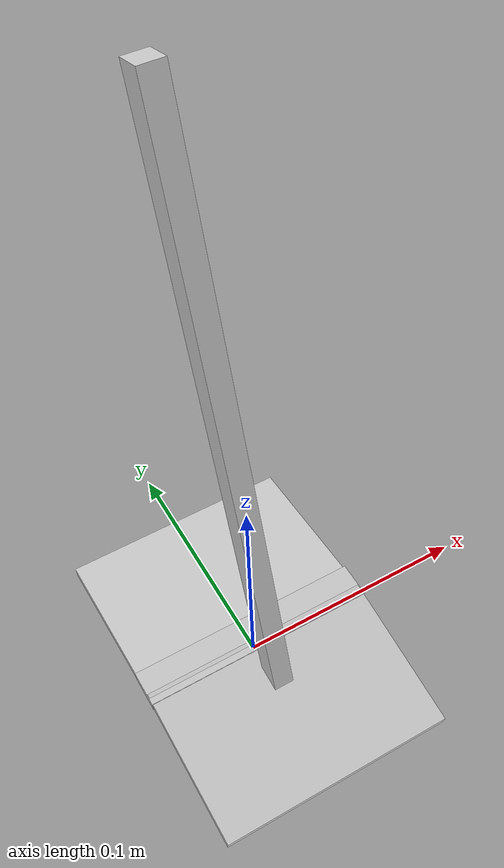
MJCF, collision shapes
<mujoco model="wine_rack_stand">
  <asset>
  <texture file="metal.png" name="tex-wine_rack_stand" type="2d" />
  <material name="wine_rack_stand" reflectance="0.5" texrepeat="1 1" texture="tex-wine_rack_stand" texuniform="false" />
  <mesh file="visual/wine_rack_stand_vis.msh" name="wine_rack_stand_vis" scale="0.0025 0.0025 0.0025" /></asset>
  <worldbody>
    <body>
      <body name="object">
      <geom solimp="0.998 0.998 0.001" solref="0.001 1" density="100" friction="0.95 0.3 0.1" type="mesh" mesh="wine_rack_stand_vis" conaffinity="0" contype="0" group="1" material="wine_rack_stand" /><geom solimp="0.998 0.998 0.001" solref="0.001 1" density="100" friction="0.95 0.3 0.1" type="box" pos="-0.00000 0.00000 0.00365" quat="0.50000 -0.50000 0.50000 0.50000" size="0.00250 0.03692 0.05168" group="0" rgba="0.8 0.8 0.8 0.3" /><geom solimp="0.998 0.998 0.001" solref="0.001 1" density="100" friction="0.95 0.3 0.1" type="box" pos="-0.00000 0.03853 0.00559" quat="0.70560 -0.04613 -0.70560 0.04613" size="0.00248 0.03336 0.04997" group="0" rgba="0.8 0.8 0.8 0.3" /><geom solimp="0.998 0.998 0.001" solref="0.001 1" density="100" friction="0.95 0.3 0.1" type="box" pos="-0.00000 -0.03572 0.00702" quat="0.04959 -0.70537 -0.04959 0.70537" size="0.00248 0.03336 0.04997" group="0" rgba="0.8 0.8 0.8 0.3" /><geom solimp="0.998 0.998 0.001" solref="0.001 1" density="100" friction="0.95 0.3 0.1" type="box" pos="0.00000 0.00000 0.01139" quat="0.70711 0.00000 0.70711 0.00000" size="0.00250 0.00783 0.05025" group="0" rgba="0.8 0.8 0.8 0.3" /><geom solimp="0.998 0.998 0.001" solref="0.001 1" density="100" friction="0.95 0.3 0.1" type="box" pos="0.00000 0.01054 0.12618" quat="0.00000 -0.00000 0.99128 -0.13175" size="0.00423 0.00511 0.12109" group="0" rgba="0.8 0.8 0.8 0.3" /></body>
      <site rgba="0 0 0 0" size="0.005" pos="0 0 -0.0240" name="bottom_site" />
      <site rgba="0 0 0 0" size="0.005" pos="0 0 0.04" name="top_site" />
      <site rgba="0 0 0 0" size="0.005" pos="0.025 0.025 0" name="horizontal_radius_site" />
    </body>
  </worldbody>
</mujoco>
